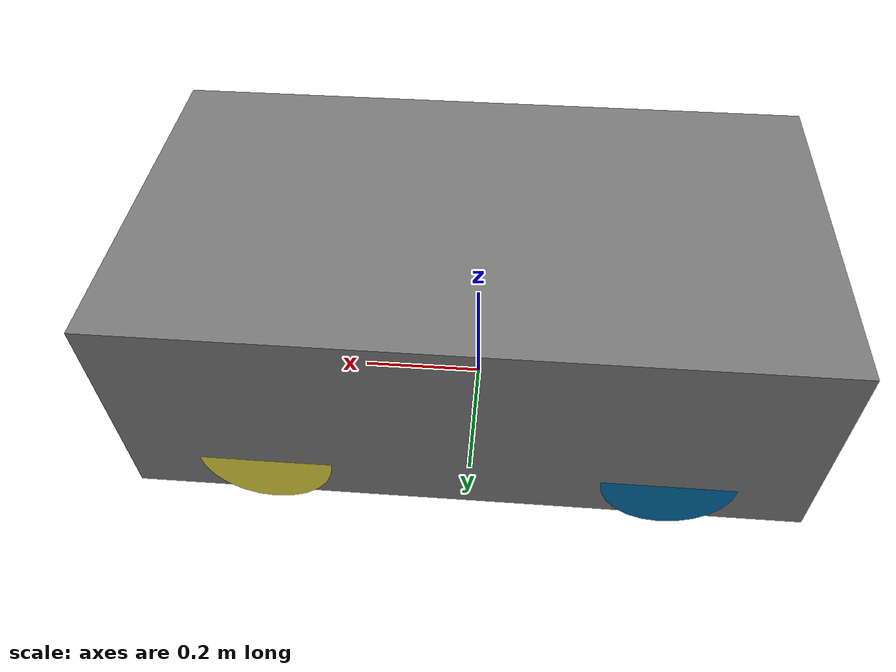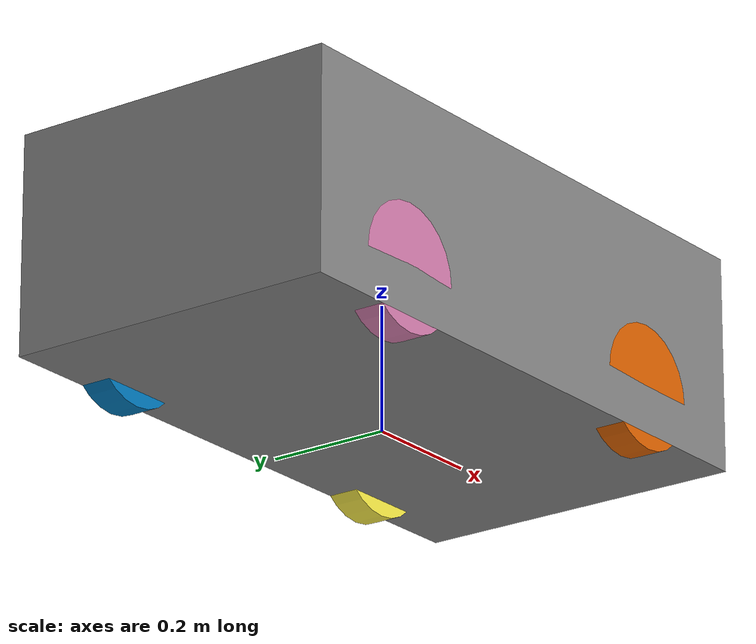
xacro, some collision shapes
<?xml version="1.0"?>

<robot name="$(arg prefix)mm1" xmlns:xacro="http://ros.org/wiki/xacro" xmlns:gz="http://gazebosim.org/schema">

  <xacro:arg name="prefix" default="r1_" />

  <xacro:arg name="omni" default="false" />
  <xacro:arg name="mm" default="false" />
  <xacro:arg name="simulation_controllers" default="$(find lampo_description)/config/ur_controllers.yaml" />

  <xacro:if value="$(arg omni)">
    <xacro:include filename="$(find lampo_description)/urdf/sweepee/sweepee_omni.xacro" />
  </xacro:if>

  <xacro:unless value="$(arg omni)">
    <xacro:include filename="$(find lampo_description)/urdf/sweepee/sweepee_diff.xacro" />
  </xacro:unless>

  <xacro:sweepee  prefix="$(arg prefix)">
    <origin xyz="0 0 0" rpy="0 0 0" />
  </xacro:sweepee>

  <!-- Mobile Manipulator Configuration -->
  <xacro:if value="$(arg mm)">
    <xacro:include filename="$(find lampo_description)/urdf/mm_arm.xacro" />
  </xacro:if>

</robot>

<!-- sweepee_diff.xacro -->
<robot name="eureca" xmlns:xacro="http://www.ros.org/wiki/xacro" xmlns:gz="http://gazebosim.org/schema">

  <xacro:property name="M_PI" value="3.14159"/>

  <!-- Base Size -->
  <xacro:property name="base_x_size" value="1.02" />
  <xacro:property name="base_y_size" value="0.55" />
  <xacro:property name="base_z_size" value="0.35" />

  <xacro:macro name="sweepee" params="prefix *origin">

    <!-- Base footprint is on the ground under the robot -->
    <link name="${prefix}base_footprint">
    </link>

    <!-- Base link is the center of the robot's bottom plate -->
    <link name="${prefix}base_link_sweepee">
      <visual>
        <origin xyz="0 0 0.032" rpy="0 0 -${M_PI/2}" />
        <geometry>
          <mesh filename="file://$(find lampo_description)//meshes/sweepee/visual/sweepee.dae"/>
        </geometry>
        <material name="Gray">
          <color rgba="0.5 0.5 0.5 1.0" />
        </material>
      </visual>
      <inertial>
          <origin xyz="0 0 0.2" rpy="0 0 0" />
          <mass value="250" />
          <!-- Solid-box approximation for 250 kg, 1.02 x 0.55 x 0.35 m -->
          <inertia ixx="8.85" ixy="0.0" ixz="0.0" iyy="24.23" iyz="0.0" izz="27.98" />
      </inertial>
      <collision>
        <origin xyz="0 0 0.2" rpy="0 0 0" />
        <geometry>
          <box size="${base_x_size} ${base_y_size} ${base_z_size}"/>
        </geometry>
      </collision>
    </link>

    <joint name="${prefix}base_footprint_joint" type="fixed">
      <xacro:insert_block name="origin"/>
      <parent link="${prefix}base_footprint" />
      <child link="${prefix}base_link_sweepee" />
    </joint>

    <link name="${prefix}front_laser">
      <inertial>
        <mass value="1.1"/>
        <!-- SICK LMS1xx: solid cylinder r=0.1 m, h=0.005 m -->
        <inertia ixx="0.00275"  ixy="0"  ixz="0" iyy="0.00275" iyz="0" izz="0.0055" />
      </inertial>
      <visual>
        <geometry>
          <cylinder length="0.005" radius="0.1"/>
        </geometry>
      </visual>
    </link>

    <joint name="${prefix}front_laser_joint" type="fixed">
      <origin xyz="${base_x_size/2-0.15} 0.0 ${base_z_size/2+0.085}" rpy="0 0 0" />
      <parent link="${prefix}base_link_sweepee" />
      <child link="${prefix}front_laser" />
    </joint>

    <gazebo reference='${prefix}front_laser_joint'>
      <disableFixedJointLumping>true</disableFixedJointLumping>
      <preserveFixedJoint>true</preserveFixedJoint>
    </gazebo>

      <link name='${prefix}front_left_wheel'>
        <inertial>
          <mass value="5"/>
          <inertia ixx="0.014"  ixy="0"  ixz="0" iyy="0.014" iyz="0" izz="0.025" />
        </inertial>
        <visual>
          <geometry>
            <cylinder length="0.05" radius="0.1"/>
          </geometry>
        </visual>
        <collision>
          <geometry>
            <cylinder length="0.05" radius="0.1"/>
          </geometry>
        </collision>
      </link>

      <link name='${prefix}rear_left_wheel'>
        <inertial>
          <mass value="5"/>
          <inertia ixx="0.014"  ixy="0"  ixz="0" iyy="0.014" iyz="0" izz="0.025" />
        </inertial>
        <visual>
          <geometry>
            <cylinder length="0.05" radius="0.1"/>
          </geometry>
        </visual>
        <collision>
          <geometry>
            <cylinder length="0.05" radius="0.1"/>
          </geometry>
        </collision>
      </link>

      <link name='${prefix}front_right_wheel'>
        <inertial>
          <mass value="5"/>
          <inertia ixx="0.014"  ixy="0"  ixz="0" iyy="0.014" iyz="0" izz="0.025" />
        </inertial>
        <visual>
          <geometry>
            <cylinder length="0.05" radius="0.1"/>
          </geometry>
        </visual>
        <collision>
          <geometry>
            <cylinder length="0.05" radius="0.1"/>
          </geometry>
        </collision>
      </link>

      <link name='${prefix}rear_right_wheel'>
        <inertial>
          <mass value="5"/>
          <inertia ixx="0.014"  ixy="0"  ixz="0" iyy="0.014" iyz="0" izz="0.025" />
        </inertial>
        <visual>
          <geometry>
            <cylinder length="0.05" radius="0.1"/>
          </geometry>
        </visual>
        <collision>
          <geometry>
            <cylinder length="0.05" radius="0.1"/>
          </geometry>
        </collision>
      </link>

      <gazebo reference='${prefix}front_left_wheel'>
        <collision>
          <surface>
            <friction>
              <ode>
                <mu>0.7</mu>
                <mu2>0.3</mu2>
              </ode>
            </friction>
          </surface>
        </collision>
      </gazebo>

      <gazebo reference='${prefix}front_right_wheel'>
        <collision>
          <surface>
            <friction>
              <ode>
                <mu>0.7</mu>
                <mu2>0.3</mu2>
              </ode>
            </friction>
          </surface>
        </collision>
      </gazebo>

      <gazebo reference='${prefix}rear_left_wheel'>
        <collision>
          <surface>
            <friction>
              <ode>
                <mu>0.05</mu>
                <mu2>0.01</mu2>
              </ode>
            </friction>
          </surface>
        </collision>
      </gazebo>

      <gazebo reference='${prefix}rear_right_wheel'>
        <collision>
          <surface>
            <friction>
              <ode>
                <mu>0.05</mu>
                <mu2>0.01</mu2>
              </ode>
            </friction>
          </surface>
        </collision>
      </gazebo>

      <joint name='${prefix}front_left_wheel_joint' type='continuous'>
        <origin xyz="0.3 0.25 0.1" rpy="-1.5707 0 0"/>
        <parent link="${prefix}base_link_sweepee"/>
        <child link="${prefix}front_left_wheel"/>
        <axis xyz="0 0 1"/>
        <limit effort="150.0" velocity="15.1"/>
      <dynamics damping="0.05" friction="0.1"/>
      </joint>

      <joint name='${prefix}front_right_wheel_joint' type='continuous'>
        <origin xyz="0.3 -0.25 0.1" rpy="-1.5707 0 0"/>
        <parent link="${prefix}base_link_sweepee"/>
        <child link="${prefix}front_right_wheel"/>
        <axis xyz="0 0 1"/>
        <limit effort="150.0" velocity="15.1"/>
      <dynamics damping="0.05" friction="0.1"/>
      </joint>

      <joint name='${prefix}rear_left_wheel_joint' type='continuous'>
        <origin xyz="-0.3 0.25 0.1" rpy="-1.5707 0 0"/>
        <parent link="${prefix}base_link_sweepee"/>
        <child link="${prefix}rear_left_wheel"/>
        <axis xyz="0 0 1"/>
        <limit effort="150.0" velocity="15.1"/>
      <dynamics damping="0.05" friction="0.1"/>
      </joint>

      <joint name='${prefix}rear_right_wheel_joint' type='continuous'>
        <origin xyz="-0.3 -0.25 0.1" rpy="-1.5707 0 0"/>
        <parent link="${prefix}base_link_sweepee"/>
        <child link="${prefix}rear_right_wheel"/>
        <axis xyz="0 0 1"/>
        <limit effort="150.0" velocity="15.1"/>
      <dynamics damping="0.05" friction="0.1"/>
      </joint>

  <gazebo reference="${prefix}front_laser">
    <sensor name='gpu_lidar' type='gpu_lidar'>
        <pose relative_to='${prefix}front_laser'>0 0 0 0 0 0</pose>
        <gz_frame_id>${prefix}front_laser</gz_frame_id>
        <topic>${prefix}/lidar</topic>
        <update_rate>10</update_rate>
        <ray>
            <scan>
                <horizontal>
                    <samples>640</samples>
                    <resolution>1</resolution>
                    <min_angle>-1.396263</min_angle>
                    <max_angle>1.396263</max_angle>
                </horizontal>
                <vertical>
                    <samples>1</samples>
                    <resolution>0.01</resolution>
                    <min_angle>0</min_angle>
                    <max_angle>0</max_angle>
                </vertical>
            </scan>
            <range>
                <min>0.15</min>
                <max>30.0</max>
                <resolution>0.01</resolution>
            </range>
        </ray>
        <always_on>1</always_on>
        <visualize>true</visualize>
    </sensor>
  </gazebo>

    <gazebo>
      <plugin filename="gz-sim-joint-state-publisher-system"
              name="gz::sim::systems::JointStatePublisher">
        <topic>${prefix}/joint_states</topic>
      </plugin>
    </gazebo>

  <gazebo>
      <plugin
        filename="gz-sim-diff-drive-system"
        name="gz::sim::systems::DiffDrive">
        <left_joint>${prefix}front_left_wheel_joint</left_joint>
        <right_joint>${prefix}front_right_wheel_joint</right_joint>
        <wheel_separation>0.5</wheel_separation>
        <wheel_radius>0.1</wheel_radius>
        <odom_publish_frequency>25</odom_publish_frequency>
        <max_linear_acceleration>1</max_linear_acceleration>
        <min_linear_acceleration>-1</min_linear_acceleration>
        <max_angular_acceleration>2</max_angular_acceleration>
        <min_angular_acceleration>-2</min_angular_acceleration>
        <max_linear_velocity>0.5</max_linear_velocity>
        <min_linear_velocity>-0.5</min_linear_velocity>
        <max_angular_velocity>1</max_angular_velocity>
        <min_angular_velocity>-1</min_angular_velocity>
        <topic>${prefix}/cmd_vel</topic>
        <frame_id>${prefix}odom</frame_id>
        <odom_topic>${prefix}/odom</odom_topic>
        <child_frame_id>${prefix}base_footprint</child_frame_id>
        <tf_topic>/${prefix}/tf</tf_topic>
      </plugin>
    </gazebo>

  </xacro:macro>

</robot>
